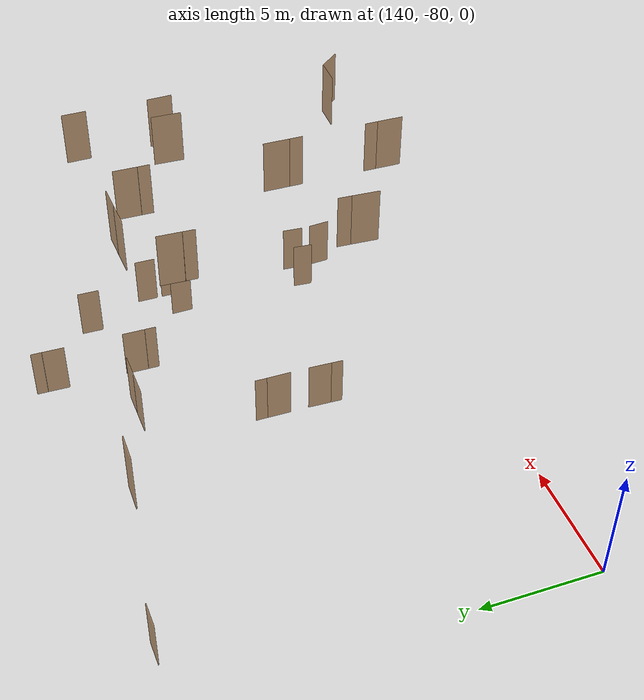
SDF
<sdf version="1.7">
 <world name="sim_world">
  <model name="puerta89">
   <pose>160.44088876173322 -76.53324441789132 0.0 0 0 1.6495602129165794</pose>
   <link name="right">
    <pose>0 0 1.11 0 0 0</pose>
    <visual name="right_visual">
     <geometry><box><size>0.9247008043293189 0.03 2.2</size></box></geometry>
     <material>
      <ambient>0.5 0.25 0 0.6</ambient>
      <diffuse>0.5 0.25 0 0.6</diffuse>
      <pbr><metal><metalness>0.0</metalness></metal></pbr>
     </material>
    </visual>
    <collision name="right_collision">
     <geometry><box><size>0.9247008043293189 0.03 2.2</size></box></geometry>
     <surface><contact><collide_bitmask>0x02</collide_bitmask></contact></surface>
    </collision>
    <inertial>
     <mass>50.0</mass>
     <inertia><ixx>20.17041666666667</ixx><iyy>23.729464906363713</iyy><izz>3.566548239697039</izz></inertia>
    </inertial>
   </link>
   <joint name="right_joint" type="revolute">
    <parent>world</parent>
    <child>right</child>
    <axis><xyz>0 0 1</xyz><limit><lower>0</lower><upper>1.57</upper></limit></axis>
    <pose>0.46735040216465945 0 0 0 0 0</pose>
   </joint>
   <plugin name="register_component" filename="libregister_component.so">
    <component name="Door">
     <v_max_door>0.5</v_max_door>
     <a_max_door>0.3</a_max_door>
     <a_nom_door>0.15</a_nom_door>
     <dx_min_door>0.01</dx_min_door>
     <f_max_door>500.0</f_max_door>
     <ros_interface>true</ros_interface>
     <door name="puerta89" type="SwingDoor" left_joint_name="empty_joint" right_joint_name="right_joint"/>
    </component>
   </plugin>
  </model>
  <model name="puerta90">
   <pose>160.43476705977383 -75.268071642846 0.0 0 0 -1.6405030245786656</pose>
   <link name="right">
    <pose>0 0 1.11 0 0 0</pose>
    <visual name="right_visual">
     <geometry><box><size>0.8701283201981976 0.03 2.2</size></box></geometry>
     <material>
      <ambient>0.5 0.25 0 0.6</ambient>
      <diffuse>0.5 0.25 0 0.6</diffuse>
      <pbr><metal><metalness>0.0</metalness></metal></pbr>
     </material>
    </visual>
    <collision name="right_collision">
     <geometry><box><size>0.8701283201981976 0.03 2.2</size></box></geometry>
     <surface><contact><collide_bitmask>0x02</collide_bitmask></contact></surface>
    </collision>
    <inertial>
     <mass>50.0</mass>
     <inertia><ixx>20.17041666666667</ixx><iyy>23.321347056712245</iyy><izz>3.1584303900455715</izz></inertia>
    </inertial>
   </link>
   <joint name="right_joint" type="revolute">
    <parent>world</parent>
    <child>right</child>
    <axis><xyz>0 0 -1</xyz><limit><lower>0</lower><upper>1.57</upper></limit></axis>
    <pose>0.4400641600990988 0 0 0 0 0</pose>
   </joint>
   <plugin name="register_component" filename="libregister_component.so">
    <component name="Door">
     <v_max_door>0.5</v_max_door>
     <a_max_door>0.3</a_max_door>
     <a_nom_door>0.15</a_nom_door>
     <dx_min_door>0.01</dx_min_door>
     <f_max_door>500.0</f_max_door>
     <ros_interface>true</ros_interface>
     <door name="puerta90" type="SwingDoor" left_joint_name="empty_joint" right_joint_name="right_joint"/>
    </component>
   </plugin>
  </model>
  <model name="puerta91">
   <pose>159.1312021676294 -75.28946604453904 0.0 0 0 -1.650242196632753</pose>
   <link name="right">
    <pose>0 0 1.11 0 0 0</pose>
    <visual name="right_visual">
     <geometry><box><size>0.8154360360300772 0.03 2.2</size></box></geometry>
     <material>
      <ambient>0.5 0.25 0 0.6</ambient>
      <diffuse>0.5 0.25 0 0.6</diffuse>
      <pbr><metal><metalness>0.0</metalness></metal></pbr>
     </material>
    </visual>
    <collision name="right_collision">
     <geometry><box><size>0.8154360360300772 0.03 2.2</size></box></geometry>
     <surface><contact><collide_bitmask>0x02</collide_bitmask></contact></surface>
    </collision>
    <inertial>
     <mass>50.0</mass>
     <inertia><ixx>20.17041666666667</ixx><iyy>22.93723303690186</iyy><izz>2.7743163702351894</izz></inertia>
    </inertial>
   </link>
   <joint name="right_joint" type="revolute">
    <parent>world</parent>
    <child>right</child>
    <axis><xyz>0 0 1</xyz><limit><lower>0</lower><upper>1.57</upper></limit></axis>
    <pose>0.4127180180150386 0 0 0 0 0</pose>
   </joint>
   <plugin name="register_component" filename="libregister_component.so">
    <component name="Door">
     <v_max_door>0.5</v_max_door>
     <a_max_door>0.3</a_max_door>
     <a_nom_door>0.15</a_nom_door>
     <dx_min_door>0.01</dx_min_door>
     <f_max_door>500.0</f_max_door>
     <ros_interface>true</ros_interface>
     <door name="puerta91" type="SwingDoor" left_joint_name="empty_joint" right_joint_name="right_joint"/>
    </component>
   </plugin>
  </model>
  <model name="puerta92">
   <pose>159.15303834162876 -69.58303005313887 0.0 0 0 1.5946024446913702</pose>
   <link name="right">
    <pose>0 0 1.11 0 0 0</pose>
    <visual name="right_visual">
     <geometry><box><size>0.9073371639634981 0.03 2.2</size></box></geometry>
     <material>
      <ambient>0.5 0.25 0 0.6</ambient>
      <diffuse>0.5 0.25 0 0.6</diffuse>
      <pbr><metal><metalness>0.0</metalness></metal></pbr>
     </material>
    </visual>
    <collision name="right_collision">
     <geometry><box><size>0.9073371639634981 0.03 2.2</size></box></geometry>
     <surface><contact><collide_bitmask>0x02</collide_bitmask></contact></surface>
    </collision>
    <inertial>
     <mass>50.0</mass>
     <inertia><ixx>20.17041666666667</ixx><iyy>23.596919704622184</iyy><izz>3.434003037955516</izz></inertia>
    </inertial>
   </link>
   <joint name="right_joint" type="revolute">
    <parent>world</parent>
    <child>right</child>
    <axis><xyz>0 0 -1</xyz><limit><lower>0</lower><upper>1.57</upper></limit></axis>
    <pose>0.45866858198174904 0 0 0 0 0</pose>
   </joint>
   <plugin name="register_component" filename="libregister_component.so">
    <component name="Door">
     <v_max_door>0.5</v_max_door>
     <a_max_door>0.3</a_max_door>
     <a_nom_door>0.15</a_nom_door>
     <dx_min_door>0.01</dx_min_door>
     <f_max_door>500.0</f_max_door>
     <ros_interface>true</ros_interface>
     <door name="puerta92" type="SwingDoor" left_joint_name="empty_joint" right_joint_name="right_joint"/>
    </component>
   </plugin>
  </model>
  <model name="puerta93">
   <pose>160.46541764312366 -69.5769504247325 0.0 0 0 1.5707963267948966</pose>
   <link name="right">
    <pose>0 0 1.11 0 0 0</pose>
    <visual name="right_visual">
     <geometry><box><size>1.1763900470803088 0.03 2.2</size></box></geometry>
     <material>
      <ambient>0.5 0.25 0 0.6</ambient>
      <diffuse>0.5 0.25 0 0.6</diffuse>
      <pbr><metal><metalness>0.0</metalness></metal></pbr>
     </material>
    </visual>
    <collision name="right_collision">
     <geometry><box><size>1.1763900470803088 0.03 2.2</size></box></geometry>
     <surface><contact><collide_bitmask>0x02</collide_bitmask></contact></surface>
    </collision>
    <inertial>
     <mass>50.0</mass>
     <inertia><ixx>20.17041666666667</ixx><iyy>25.93288976195672</iyy><izz>5.769973095290046</izz></inertia>
    </inertial>
   </link>
   <joint name="right_joint" type="revolute">
    <parent>world</parent>
    <child>right</child>
    <axis><xyz>0 0 1</xyz><limit><lower>0</lower><upper>1.57</upper></limit></axis>
    <pose>0.5931950235401544 0 0 0 0 0</pose>
   </joint>
   <plugin name="register_component" filename="libregister_component.so">
    <component name="Door">
     <v_max_door>0.5</v_max_door>
     <a_max_door>0.3</a_max_door>
     <a_nom_door>0.15</a_nom_door>
     <dx_min_door>0.01</dx_min_door>
     <f_max_door>500.0</f_max_door>
     <ros_interface>true</ros_interface>
     <door name="puerta93" type="SwingDoor" left_joint_name="empty_joint" right_joint_name="right_joint"/>
    </component>
   </plugin>
  </model>
  <model name="puerta94">
   <pose>160.46541764312366 -68.34337488797914 0.0 0 0 -1.5707963267948966</pose>
   <link name="right">
    <pose>0 0 1.11 0 0 0</pose>
    <visual name="right_visual">
     <geometry><box><size>0.8727452151851958 0.03 2.2</size></box></geometry>
     <material>
      <ambient>0.5 0.25 0 0.6</ambient>
      <diffuse>0.5 0.25 0 0.6</diffuse>
      <pbr><metal><metalness>0.0</metalness></metal></pbr>
     </material>
    </visual>
    <collision name="right_collision">
     <geometry><box><size>0.8727452151851958 0.03 2.2</size></box></geometry>
     <surface><contact><collide_bitmask>0x02</collide_bitmask></contact></surface>
    </collision>
    <inertial>
     <mass>50.0</mass>
     <inertia><ixx>20.17041666666667</ixx><iyy>23.340350877619397</iyy><izz>3.177434210952724</izz></inertia>
    </inertial>
   </link>
   <joint name="right_joint" type="revolute">
    <parent>world</parent>
    <child>right</child>
    <axis><xyz>0 0 -1</xyz><limit><lower>0</lower><upper>1.57</upper></limit></axis>
    <pose>0.4413726075925979 0 0 0 0 0</pose>
   </joint>
   <plugin name="register_component" filename="libregister_component.so">
    <component name="Door">
     <v_max_door>0.5</v_max_door>
     <a_max_door>0.3</a_max_door>
     <a_nom_door>0.15</a_nom_door>
     <dx_min_door>0.01</dx_min_door>
     <f_max_door>500.0</f_max_door>
     <ros_interface>true</ros_interface>
     <door name="puerta94" type="SwingDoor" left_joint_name="empty_joint" right_joint_name="right_joint"/>
    </component>
   </plugin>
  </model>
  <model name="puerta95">
   <pose>159.15968596300047 -65.51735744428407 0.0 0 0 -1.584109961781512</pose>
   <link name="right">
    <pose>0 0 1.11 0 0 0</pose>
    <visual name="right_visual">
     <geometry><box><size>0.9096410773566336 0.03 2.2</size></box></geometry>
     <material>
      <ambient>0.5 0.25 0 0.6</ambient>
      <diffuse>0.5 0.25 0 0.6</diffuse>
      <pbr><metal><metalness>0.0</metalness></metal></pbr>
     </material>
    </visual>
    <collision name="right_collision">
     <geometry><box><size>0.9096410773566336 0.03 2.2</size></box></geometry>
     <surface><contact><collide_bitmask>0x02</collide_bitmask></contact></surface>
    </collision>
    <inertial>
     <mass>50.0</mass>
     <inertia><ixx>20.17041666666667</ixx><iyy>23.614362040060573</iyy><izz>3.451445373393905</izz></inertia>
    </inertial>
   </link>
   <joint name="right_joint" type="revolute">
    <parent>world</parent>
    <child>right</child>
    <axis><xyz>0 0 1</xyz><limit><lower>0</lower><upper>1.57</upper></limit></axis>
    <pose>0.4598205386783168 0 0 0 0 0</pose>
   </joint>
   <plugin name="register_component" filename="libregister_component.so">
    <component name="Door">
     <v_max_door>0.5</v_max_door>
     <a_max_door>0.3</a_max_door>
     <a_nom_door>0.15</a_nom_door>
     <dx_min_door>0.01</dx_min_door>
     <f_max_door>500.0</f_max_door>
     <ros_interface>true</ros_interface>
     <door name="puerta95" type="SwingDoor" left_joint_name="empty_joint" right_joint_name="right_joint"/>
    </component>
   </plugin>
  </model>
  <model name="puerta98">
   <pose>156.05135497877384 -63.141737385296956 0.0 0 0 -1.5889700446482695</pose>
   <link name="right">
    <pose>0.22997695713537303 0 1.11 0 0 0</pose>
    <visual name="right_visual">
     <geometry><box><size>0.9099078285414919 0.03 2.2</size></box></geometry>
     <material>
      <ambient>0.5 0.25 0 0.6</ambient>
      <diffuse>0.5 0.25 0 0.6</diffuse>
      <pbr><metal><metalness>0.0</metalness></metal></pbr>
     </material>
    </visual>
    <collision name="right_collision">
     <geometry><box><size>0.9099078285414919 0.03 2.2</size></box></geometry>
     <surface><contact><collide_bitmask>0x02</collide_bitmask></contact></surface>
    </collision>
    <inertial>
     <mass>50.0</mass>
     <inertia><ixx>20.17041666666667</ixx><iyy>23.61638440183789</iyy><izz>3.453467735171221</izz></inertia>
    </inertial>
   </link>
   <joint name="right_joint" type="revolute">
    <parent>world</parent>
    <child>right</child>
    <axis><xyz>0 0 1</xyz><limit><lower>0</lower><upper>1.57</upper></limit></axis>
    <pose>0.45995391427074594 0 0 0 0 0</pose>
   </joint>
   <link name="left">
    <pose>-0.45995391427074594 0 1.11 0 0 0</pose>
    <visual name="left_visual">
     <geometry><box><size>0.44995391427074605 0.03 2.2</size></box></geometry>
     <material>
      <ambient>0.5 0.25 0 0.6</ambient>
      <diffuse>0.5 0.25 0 0.6</diffuse>
      <pbr><metal><metalness>0.0</metalness></metal></pbr>
     </material>
    </visual>
    <collision name="left_collision">
     <geometry><box><size>0.44995391427074605 0.03 2.2</size></box></geometry>
     <surface><contact><collide_bitmask>0x02</collide_bitmask></contact></surface>
    </collision>
    <inertial>
     <mass>50.0</mass>
     <inertia><ixx>20.17041666666667</ixx><iyy>21.01024385403153</iyy><izz>0.847327187364858</izz></inertia>
    </inertial>
   </link>
   <joint name="left_joint" type="revolute">
    <parent>world</parent>
    <child>left</child>
    <axis><xyz>0 0 1</xyz><limit><lower>-1.57</lower><upper>0</upper></limit></axis>
    <pose>-0.22997695713537303 0 0 0 0 0</pose>
   </joint>
   <plugin name="register_component" filename="libregister_component.so">
    <component name="Door">
     <v_max_door>0.5</v_max_door>
     <a_max_door>0.3</a_max_door>
     <a_nom_door>0.15</a_nom_door>
     <dx_min_door>0.01</dx_min_door>
     <f_max_door>500.0</f_max_door>
     <ros_interface>true</ros_interface>
     <door name="puerta98" type="DoubleSwingDoor" left_joint_name="left_joint" right_joint_name="right_joint"/>
    </component>
   </plugin>
  </model>
  <model name="puerta99">
   <pose>156.02343917636807 -66.96914746359583 0.0 0 0 1.5655522411860074</pose>
   <link name="right">
    <pose>0.23668101446797274 0 1.11 0 0 0</pose>
    <visual name="right_visual">
     <geometry><box><size>0.936724057871891 0.03 2.2</size></box></geometry>
     <material>
      <ambient>0.5 0.25 0 0.6</ambient>
      <diffuse>0.5 0.25 0 0.6</diffuse>
      <pbr><metal><metalness>0.0</metalness></metal></pbr>
     </material>
    </visual>
    <collision name="right_collision">
     <geometry><box><size>0.936724057871891 0.03 2.2</size></box></geometry>
     <surface><contact><collide_bitmask>0x02</collide_bitmask></contact></surface>
    </collision>
    <inertial>
     <mass>50.0</mass>
     <inertia><ixx>20.17041666666667</ixx><iyy>23.822716502483264</iyy><izz>3.659799835816591</izz></inertia>
    </inertial>
   </link>
   <joint name="right_joint" type="revolute">
    <parent>world</parent>
    <child>right</child>
    <axis><xyz>0 0 -1</xyz><limit><lower>0</lower><upper>1.57</upper></limit></axis>
    <pose>0.4733620289359455 0 0 0 0 0</pose>
   </joint>
   <link name="left">
    <pose>-0.4733620289359455 0 1.11 0 0 0</pose>
    <visual name="left_visual">
     <geometry><box><size>0.46336202893594547 0.03 2.2</size></box></geometry>
     <material>
      <ambient>0.5 0.25 0 0.6</ambient>
      <diffuse>0.5 0.25 0 0.6</diffuse>
      <pbr><metal><metalness>0.0</metalness></metal></pbr>
     </material>
    </visual>
    <collision name="left_collision">
     <geometry><box><size>0.46336202893594547 0.03 2.2</size></box></geometry>
     <surface><contact><collide_bitmask>0x02</collide_bitmask></contact></surface>
    </collision>
    <inertial>
     <mass>50.0</mass>
     <inertia><ixx>20.17041666666667</ixx><iyy>21.061268207748487</iyy><izz>0.8983515410818167</izz></inertia>
    </inertial>
   </link>
   <joint name="left_joint" type="revolute">
    <parent>world</parent>
    <child>left</child>
    <axis><xyz>0 0 -1</xyz><limit><lower>-1.57</lower><upper>0</upper></limit></axis>
    <pose>-0.23668101446797274 0 0 0 0 0</pose>
   </joint>
   <plugin name="register_component" filename="libregister_component.so">
    <component name="Door">
     <v_max_door>0.5</v_max_door>
     <a_max_door>0.3</a_max_door>
     <a_nom_door>0.15</a_nom_door>
     <dx_min_door>0.01</dx_min_door>
     <f_max_door>500.0</f_max_door>
     <ros_interface>true</ros_interface>
     <door name="puerta99" type="DoubleSwingDoor" left_joint_name="left_joint" right_joint_name="right_joint"/>
    </component>
   </plugin>
  </model>
  <model name="puerta100">
   <pose>151.53261331459652 -71.29571817451266 0.0 0 0 -1.5707963267948966</pose>
   <link name="right">
    <pose>0.24978367181506655 0 1.11 0 0 0</pose>
    <visual name="right_visual">
     <geometry><box><size>0.9891346872602662 0.03 2.2</size></box></geometry>
     <material>
      <ambient>0.5 0.25 0 0.6</ambient>
      <diffuse>0.5 0.25 0 0.6</diffuse>
      <pbr><metal><metalness>0.0</metalness></metal></pbr>
     </material>
    </visual>
    <collision name="right_collision">
     <geometry><box><size>0.9891346872602662 0.03 2.2</size></box></geometry>
     <surface><contact><collide_bitmask>0x02</collide_bitmask></contact></surface>
    </collision>
    <inertial>
     <mass>50.0</mass>
     <inertia><ixx>20.17041666666667</ixx><iyy>24.243280956422772</iyy><izz>4.080364289756103</izz></inertia>
    </inertial>
   </link>
   <joint name="right_joint" type="revolute">
    <parent>world</parent>
    <child>right</child>
    <axis><xyz>0 0 -1</xyz><limit><lower>0</lower><upper>1.57</upper></limit></axis>
    <pose>0.4995673436301331 0 0 0 0 0</pose>
   </joint>
   <link name="left">
    <pose>-0.4995673436301331 0 1.11 0 0 0</pose>
    <visual name="left_visual">
     <geometry><box><size>0.4895673436301331 0.03 2.2</size></box></geometry>
     <material>
      <ambient>0.5 0.25 0 0.6</ambient>
      <diffuse>0.5 0.25 0 0.6</diffuse>
      <pbr><metal><metalness>0.0</metalness></metal></pbr>
     </material>
    </visual>
    <collision name="left_collision">
     <geometry><box><size>0.4895673436301331 0.03 2.2</size></box></geometry>
     <surface><contact><collide_bitmask>0x02</collide_bitmask></contact></surface>
    </collision>
    <inertial>
     <mass>50.0</mass>
     <inertia><ixx>20.17041666666667</ixx><iyy>21.16531743312111</iyy><izz>1.0024007664544368</izz></inertia>
    </inertial>
   </link>
   <joint name="left_joint" type="revolute">
    <parent>world</parent>
    <child>left</child>
    <axis><xyz>0 0 -1</xyz><limit><lower>-1.57</lower><upper>0</upper></limit></axis>
    <pose>-0.24978367181506655 0 0 0 0 0</pose>
   </joint>
   <plugin name="register_component" filename="libregister_component.so">
    <component name="Door">
     <v_max_door>0.5</v_max_door>
     <a_max_door>0.3</a_max_door>
     <a_nom_door>0.15</a_nom_door>
     <dx_min_door>0.01</dx_min_door>
     <f_max_door>500.0</f_max_door>
     <ros_interface>true</ros_interface>
     <door name="puerta100" type="DoubleSwingDoor" left_joint_name="left_joint" right_joint_name="right_joint"/>
    </component>
   </plugin>
  </model>
  <model name="puerta101">
   <pose>151.50812650675906 -73.53956386554972 0.0 0 0 1.5372584369946147</pose>
   <link name="right">
    <pose>0.24342019335349463 0 1.11 0 0 0</pose>
    <visual name="right_visual">
     <geometry><box><size>0.9636807734139783 0.03 2.2</size></box></geometry>
     <material>
      <ambient>0.5 0.25 0 0.6</ambient>
      <diffuse>0.5 0.25 0 0.6</diffuse>
      <pbr><metal><metalness>0.0</metalness></metal></pbr>
     </material>
    </visual>
    <collision name="right_collision">
     <geometry><box><size>0.9636807734139783 0.03 2.2</size></box></geometry>
     <surface><contact><collide_bitmask>0x02</collide_bitmask></contact></surface>
    </collision>
    <inertial>
     <mass>50.0</mass>
     <inertia><ixx>20.17041666666667</ixx><iyy>24.036169304365686</iyy><izz>3.8732526376990144</izz></inertia>
    </inertial>
   </link>
   <joint name="right_joint" type="revolute">
    <parent>world</parent>
    <child>right</child>
    <axis><xyz>0 0 1</xyz><limit><lower>0</lower><upper>1.57</upper></limit></axis>
    <pose>0.48684038670698915 0 0 0 0 0</pose>
   </joint>
   <link name="left">
    <pose>-0.48684038670698915 0 1.11 0 0 0</pose>
    <visual name="left_visual">
     <geometry><box><size>0.47684038670698925 0.03 2.2</size></box></geometry>
     <material>
      <ambient>0.5 0.25 0 0.6</ambient>
      <diffuse>0.5 0.25 0 0.6</diffuse>
      <pbr><metal><metalness>0.0</metalness></metal></pbr>
     </material>
    </visual>
    <collision name="left_collision">
     <geometry><box><size>0.47684038670698925 0.03 2.2</size></box></geometry>
     <surface><contact><collide_bitmask>0x02</collide_bitmask></contact></surface>
    </collision>
    <inertial>
     <mass>50.0</mass>
     <inertia><ixx>20.17041666666667</ixx><iyy>21.11406980997863</iyy><izz>0.9511531433119628</izz></inertia>
    </inertial>
   </link>
   <joint name="left_joint" type="revolute">
    <parent>world</parent>
    <child>left</child>
    <axis><xyz>0 0 1</xyz><limit><lower>-1.57</lower><upper>0</upper></limit></axis>
    <pose>-0.24342019335349463 0 0 0 0 0</pose>
   </joint>
   <plugin name="register_component" filename="libregister_component.so">
    <component name="Door">
     <v_max_door>0.5</v_max_door>
     <a_max_door>0.3</a_max_door>
     <a_nom_door>0.15</a_nom_door>
     <dx_min_door>0.01</dx_min_door>
     <f_max_door>500.0</f_max_door>
     <ros_interface>true</ros_interface>
     <door name="puerta101" type="DoubleSwingDoor" left_joint_name="left_joint" right_joint_name="right_joint"/>
    </component>
   </plugin>
  </model>
  <model name="puerta156">
   <pose>142.0985446758022 -63.7868722099975 0.0 0 0 0.023340412605322203</pose>
   <link name="right">
    <pose>0 0 1.11 0 0 0</pose>
    <visual name="right_visual">
     <geometry><box><size>0.9815229744686816 0.03 2.2</size></box></geometry>
     <material>
      <ambient>0.5 0.25 0 0.6</ambient>
      <diffuse>0.5 0.25 0 0.6</diffuse>
      <pbr><metal><metalness>0.0</metalness></metal></pbr>
     </material>
    </visual>
    <collision name="right_collision">
     <geometry><box><size>0.9815229744686816 0.03 2.2</size></box></geometry>
     <surface><contact><collide_bitmask>0x02</collide_bitmask></contact></surface>
    </collision>
    <inertial>
     <mass>50.0</mass>
     <inertia><ixx>20.17041666666667</ixx><iyy>24.18078062254104</iyy><izz>4.017863955874368</izz></inertia>
    </inertial>
   </link>
   <joint name="right_joint" type="revolute">
    <parent>world</parent>
    <child>right</child>
    <axis><xyz>0 0 1</xyz><limit><lower>0</lower><upper>1.57</upper></limit></axis>
    <pose>0.4957614872343408 0 0 0 0 0</pose>
   </joint>
   <plugin name="register_component" filename="libregister_component.so">
    <component name="Door">
     <v_max_door>0.5</v_max_door>
     <a_max_door>0.3</a_max_door>
     <a_nom_door>0.15</a_nom_door>
     <dx_min_door>0.01</dx_min_door>
     <f_max_door>500.0</f_max_door>
     <ros_interface>true</ros_interface>
     <door name="puerta156" type="SwingDoor" left_joint_name="empty_joint" right_joint_name="right_joint"/>
    </component>
   </plugin>
  </model>
  <model name="puerta157">
   <pose>153.52910858763283 -66.10093866096707 0.0 0 0 0.024184844315332625</pose>
   <link name="right">
    <pose>0.5319547557124498 0 1.11 0 0 0</pose>
    <visual name="right_visual">
     <geometry><box><size>1.0539095114248995 0.03 2.2</size></box></geometry>
     <material>
      <ambient>0.5 0.25 0 0.6</ambient>
      <diffuse>0.5 0.25 0 0.6</diffuse>
      <pbr><metal><metalness>0.0</metalness></metal></pbr>
     </material>
    </visual>
    <collision name="right_collision">
     <geometry><box><size>1.0539095114248995 0.03 2.2</size></box></geometry>
     <surface><contact><collide_bitmask>0x02</collide_bitmask></contact></surface>
    </collision>
    <inertial>
     <mass>50.0</mass>
     <inertia><ixx>20.17041666666667</ixx><iyy>24.7946885761328</iyy><izz>4.631771909466127</izz></inertia>
    </inertial>
   </link>
   <joint name="right_joint" type="revolute">
    <parent>world</parent>
    <child>right</child>
    <axis><xyz>0 0 -1</xyz><limit><lower>0</lower><upper>1.57</upper></limit></axis>
    <pose>0.5319547557124498 0 0 0 0 0</pose>
   </joint>
   <link name="left">
    <pose>-0.5319547557124498 0 1.11 0 0 0</pose>
    <visual name="left_visual">
     <geometry><box><size>1.0539095114248995 0.03 2.2</size></box></geometry>
     <material>
      <ambient>0.5 0.25 0 0.6</ambient>
      <diffuse>0.5 0.25 0 0.6</diffuse>
      <pbr><metal><metalness>0.0</metalness></metal></pbr>
     </material>
    </visual>
    <collision name="left_collision">
     <geometry><box><size>1.0539095114248995 0.03 2.2</size></box></geometry>
     <surface><contact><collide_bitmask>0x02</collide_bitmask></contact></surface>
    </collision>
    <inertial>
     <mass>50.0</mass>
     <inertia><ixx>20.17041666666667</ixx><iyy>24.7946885761328</iyy><izz>4.631771909466127</izz></inertia>
    </inertial>
   </link>
   <joint name="left_joint" type="revolute">
    <parent>world</parent>
    <child>left</child>
    <axis><xyz>0 0 -1</xyz><limit><lower>-1.57</lower><upper>0</upper></limit></axis>
    <pose>-0.5319547557124498 0 0 0 0 0</pose>
   </joint>
   <plugin name="register_component" filename="libregister_component.so">
    <component name="Door">
     <v_max_door>0.5</v_max_door>
     <a_max_door>0.3</a_max_door>
     <a_nom_door>0.15</a_nom_door>
     <dx_min_door>0.01</dx_min_door>
     <f_max_door>500.0</f_max_door>
     <ros_interface>true</ros_interface>
     <door name="puerta157" type="DoubleSwingDoor" left_joint_name="left_joint" right_joint_name="right_joint"/>
    </component>
   </plugin>
  </model>
  <model name="puerta201">
   <pose>142.14807680308064 -63.75079795901105 8.0 0 0 -3.141256157642585</pose>
   <link name="right">
    <pose>0 0 1.11 0 0 0</pose>
    <visual name="right_visual">
     <geometry><box><size>0.9446918614332197 0.03 2.2</size></box></geometry>
     <material>
      <ambient>0.5 0.25 0 0.6</ambient>
      <diffuse>0.5 0.25 0 0.6</diffuse>
      <pbr><metal><metalness>0.0</metalness></metal></pbr>
     </material>
    </visual>
    <collision name="right_collision">
     <geometry><box><size>0.9446918614332197 0.03 2.2</size></box></geometry>
     <surface><contact><collide_bitmask>0x02</collide_bitmask></contact></surface>
    </collision>
    <inertial>
     <mass>50.0</mass>
     <inertia><ixx>20.17041666666667</ixx><iyy>23.885177971075677</iyy><izz>3.722261304409007</izz></inertia>
    </inertial>
   </link>
   <joint name="right_joint" type="revolute">
    <parent>world</parent>
    <child>right</child>
    <axis><xyz>0 0 1</xyz><limit><lower>0</lower><upper>1.57</upper></limit></axis>
    <pose>0.47734593071660986 0 0 0 0 0</pose>
   </joint>
   <plugin name="register_component" filename="libregister_component.so">
    <component name="Door">
     <v_max_door>0.5</v_max_door>
     <a_max_door>0.3</a_max_door>
     <a_nom_door>0.15</a_nom_door>
     <dx_min_door>0.01</dx_min_door>
     <f_max_door>500.0</f_max_door>
     <ros_interface>true</ros_interface>
     <door name="puerta201" type="SwingDoor" left_joint_name="empty_joint" right_joint_name="right_joint"/>
    </component>
   </plugin>
  </model>
  <model name="puerta204">
   <pose>153.8688273956894 -66.16469992766488 8.0 0 0 -3.0987736760684026</pose>
   <link name="right">
    <pose>0.516186154718727 0 1.11 0 0 0</pose>
    <visual name="right_visual">
     <geometry><box><size>1.022372309437454 0.03 2.2</size></box></geometry>
     <material>
      <ambient>0.5 0.25 0 0.6</ambient>
      <diffuse>0.5 0.25 0 0.6</diffuse>
      <pbr><metal><metalness>0.0</metalness></metal></pbr>
     </material>
    </visual>
    <collision name="right_collision">
     <geometry><box><size>1.022372309437454 0.03 2.2</size></box></geometry>
     <surface><contact><collide_bitmask>0x02</collide_bitmask></contact></surface>
    </collision>
    <inertial>
     <mass>50.0</mass>
     <inertia><ixx>20.17041666666667</ixx><iyy>24.521854746268644</iyy><izz>4.3589380796019705</izz></inertia>
    </inertial>
   </link>
   <joint name="right_joint" type="revolute">
    <parent>world</parent>
    <child>right</child>
    <axis><xyz>0 0 1</xyz><limit><lower>0</lower><upper>1.57</upper></limit></axis>
    <pose>0.516186154718727 0 0 0 0 0</pose>
   </joint>
   <link name="left">
    <pose>-0.516186154718727 0 1.11 0 0 0</pose>
    <visual name="left_visual">
     <geometry><box><size>1.022372309437454 0.03 2.2</size></box></geometry>
     <material>
      <ambient>0.5 0.25 0 0.6</ambient>
      <diffuse>0.5 0.25 0 0.6</diffuse>
      <pbr><metal><metalness>0.0</metalness></metal></pbr>
     </material>
    </visual>
    <collision name="left_collision">
     <geometry><box><size>1.022372309437454 0.03 2.2</size></box></geometry>
     <surface><contact><collide_bitmask>0x02</collide_bitmask></contact></surface>
    </collision>
    <inertial>
     <mass>50.0</mass>
     <inertia><ixx>20.17041666666667</ixx><iyy>24.521854746268644</iyy><izz>4.3589380796019705</izz></inertia>
    </inertial>
   </link>
   <joint name="left_joint" type="revolute">
    <parent>world</parent>
    <child>left</child>
    <axis><xyz>0 0 1</xyz><limit><lower>-1.57</lower><upper>0</upper></limit></axis>
    <pose>-0.516186154718727 0 0 0 0 0</pose>
   </joint>
   <plugin name="register_component" filename="libregister_component.so">
    <component name="Door">
     <v_max_door>0.5</v_max_door>
     <a_max_door>0.3</a_max_door>
     <a_nom_door>0.15</a_nom_door>
     <dx_min_door>0.01</dx_min_door>
     <f_max_door>500.0</f_max_door>
     <ros_interface>true</ros_interface>
     <door name="puerta204" type="DoubleSwingDoor" left_joint_name="left_joint" right_joint_name="right_joint"/>
    </component>
   </plugin>
  </model>
  <model name="puerta205">
   <pose>151.57356799195315 -67.83596221943827 8.0 0 0 1.531565202789341</pose>
   <link name="right">
    <pose>0.23933366051901594 0 1.11 0 0 0</pose>
    <visual name="right_visual">
     <geometry><box><size>0.9473346420760635 0.03 2.2</size></box></geometry>
     <material>
      <ambient>0.5 0.25 0 0.6</ambient>
      <diffuse>0.5 0.25 0 0.6</diffuse>
      <pbr><metal><metalness>0.0</metalness></metal></pbr>
     </material>
    </visual>
    <collision name="right_collision">
     <geometry><box><size>0.9473346420760635 0.03 2.2</size></box></geometry>
     <surface><contact><collide_bitmask>0x02</collide_bitmask></contact></surface>
    </collision>
    <inertial>
     <mass>50.0</mass>
     <inertia><ixx>20.17041666666667</ixx><iyy>23.90601218365577</iyy><izz>3.743095516989098</izz></inertia>
    </inertial>
   </link>
   <joint name="right_joint" type="revolute">
    <parent>world</parent>
    <child>right</child>
    <axis><xyz>0 0 1</xyz><limit><lower>0</lower><upper>1.57</upper></limit></axis>
    <pose>0.4786673210380318 0 0 0 0 0</pose>
   </joint>
   <link name="left">
    <pose>-0.4786673210380318 0 1.11 0 0 0</pose>
    <visual name="left_visual">
     <geometry><box><size>0.4686673210380319 0.03 2.2</size></box></geometry>
     <material>
      <ambient>0.5 0.25 0 0.6</ambient>
      <diffuse>0.5 0.25 0 0.6</diffuse>
      <pbr><metal><metalness>0.0</metalness></metal></pbr>
     </material>
    </visual>
    <collision name="left_collision">
     <geometry><box><size>0.4686673210380319 0.03 2.2</size></box></geometry>
     <surface><contact><collide_bitmask>0x02</collide_bitmask></contact></surface>
    </collision>
    <inertial>
     <mass>50.0</mass>
     <inertia><ixx>20.17041666666667</ixx><iyy>21.08187107420403</iyy><izz>0.918954407537357</izz></inertia>
    </inertial>
   </link>
   <joint name="left_joint" type="revolute">
    <parent>world</parent>
    <child>left</child>
    <axis><xyz>0 0 1</xyz><limit><lower>-1.57</lower><upper>0</upper></limit></axis>
    <pose>-0.23933366051901594 0 0 0 0 0</pose>
   </joint>
   <plugin name="register_component" filename="libregister_component.so">
    <component name="Door">
     <v_max_door>0.5</v_max_door>
     <a_max_door>0.3</a_max_door>
     <a_nom_door>0.15</a_nom_door>
     <dx_min_door>0.01</dx_min_door>
     <f_max_door>500.0</f_max_door>
     <ros_interface>true</ros_interface>
     <door name="puerta205" type="DoubleSwingDoor" left_joint_name="left_joint" right_joint_name="right_joint"/>
    </component>
   </plugin>
  </model>
  <model name="puerta206">
   <pose>156.00984393417775 -67.34418470225924 8.0 0 0 1.5638315420523694</pose>
   <link name="right">
    <pose>0.23916673555638002 0 1.11 0 0 0</pose>
    <visual name="right_visual">
     <geometry><box><size>0.9466669422255198 0.03 2.2</size></box></geometry>
     <material>
      <ambient>0.5 0.25 0 0.6</ambient>
      <diffuse>0.5 0.25 0 0.6</diffuse>
      <pbr><metal><metalness>0.0</metalness></metal></pbr>
     </material>
    </visual>
    <collision name="right_collision">
     <geometry><box><size>0.9466669422255198 0.03 2.2</size></box></geometry>
     <surface><contact><collide_bitmask>0x02</collide_bitmask></contact></surface>
    </collision>
    <inertial>
     <mass>50.0</mass>
     <inertia><ixx>20.17041666666667</ixx><iyy>23.900742914594236</iyy><izz>3.7378262479275657</izz></inertia>
    </inertial>
   </link>
   <joint name="right_joint" type="revolute">
    <parent>world</parent>
    <child>right</child>
    <axis><xyz>0 0 -1</xyz><limit><lower>0</lower><upper>1.57</upper></limit></axis>
    <pose>0.4783334711127599 0 0 0 0 0</pose>
   </joint>
   <link name="left">
    <pose>-0.4783334711127599 0 1.11 0 0 0</pose>
    <visual name="left_visual">
     <geometry><box><size>0.46833347111276 0.03 2.2</size></box></geometry>
     <material>
      <ambient>0.5 0.25 0 0.6</ambient>
      <diffuse>0.5 0.25 0 0.6</diffuse>
      <pbr><metal><metalness>0.0</metalness></metal></pbr>
     </material>
    </visual>
    <collision name="left_collision">
     <geometry><box><size>0.46833347111276 0.03 2.2</size></box></geometry>
     <surface><contact><collide_bitmask>0x02</collide_bitmask></contact></surface>
    </collision>
    <inertial>
     <mass>50.0</mass>
     <inertia><ixx>20.17041666666667</ixx><iyy>21.0805676673522</iyy><izz>0.917651000685527</izz></inertia>
    </inertial>
   </link>
   <joint name="left_joint" type="revolute">
    <parent>world</parent>
    <child>left</child>
    <axis><xyz>0 0 -1</xyz><limit><lower>-1.57</lower><upper>0</upper></limit></axis>
    <pose>-0.23916673555638002 0 0 0 0 0</pose>
   </joint>
   <plugin name="register_component" filename="libregister_component.so">
    <component name="Door">
     <v_max_door>0.5</v_max_door>
     <a_max_door>0.3</a_max_door>
     <a_nom_door>0.15</a_nom_door>
     <dx_min_door>0.01</dx_min_door>
     <f_max_door>500.0</f_max_door>
     <ros_interface>true</ros_interface>
     <door name="puerta206" type="DoubleSwingDoor" left_joint_name="left_joint" right_joint_name="right_joint"/>
    </component>
   </plugin>
  </model>
  <model name="puerta207">
   <pose>160.50575286991804 -66.13023541537333 8.0 0 0 1.5965676495795718</pose>
   <link name="right">
    <pose>0 0 1.11 0 0 0</pose>
    <visual name="right_visual">
     <geometry><box><size>0.9793890312716746 0.03 2.2</size></box></geometry>
     <material>
      <ambient>0.5 0.25 0 0.6</ambient>
      <diffuse>0.5 0.25 0 0.6</diffuse>
      <pbr><metal><metalness>0.0</metalness></metal></pbr>
     </material>
    </visual>
    <collision name="right_collision">
     <geometry><box><size>0.9793890312716746 0.03 2.2</size></box></geometry>
     <surface><contact><collide_bitmask>0x02</collide_bitmask></contact></surface>
    </collision>
    <inertial>
     <mass>50.0</mass>
     <inertia><ixx>20.17041666666667</ixx><iyy>24.163345310730293</iyy><izz>4.000428644063622</izz></inertia>
    </inertial>
   </link>
   <joint name="right_joint" type="revolute">
    <parent>world</parent>
    <child>right</child>
    <axis><xyz>0 0 1</xyz><limit><lower>0</lower><upper>1.57</upper></limit></axis>
    <pose>0.49469451563583733 0 0 0 0 0</pose>
   </joint>
   <plugin name="register_component" filename="libregister_component.so">
    <component name="Door">
     <v_max_door>0.5</v_max_door>
     <a_max_door>0.3</a_max_door>
     <a_nom_door>0.15</a_nom_door>
     <dx_min_door>0.01</dx_min_door>
     <f_max_door>500.0</f_max_door>
     <ros_interface>true</ros_interface>
     <door name="puerta207" type="SwingDoor" left_joint_name="empty_joint" right_joint_name="right_joint"/>
    </component>
   </plugin>
  </model>
  <model name="puerta208">
   <pose>160.53823805861072 -69.63600013183185 8.0 0 0 1.6075339385694647</pose>
   <link name="right">
    <pose>0 0 1.11 0 0 0</pose>
    <visual name="right_visual">
     <geometry><box><size>1.0190088008378178 0.03 2.2</size></box></geometry>
     <material>
      <ambient>0.5 0.25 0 0.6</ambient>
      <diffuse>0.5 0.25 0 0.6</diffuse>
      <pbr><metal><metalness>0.0</metalness></metal></pbr>
     </material>
    </visual>
    <collision name="right_collision">
     <geometry><box><size>1.0190088008378178 0.03 2.2</size></box></geometry>
     <surface><contact><collide_bitmask>0x02</collide_bitmask></contact></surface>
    </collision>
    <inertial>
     <mass>50.0</mass>
     <inertia><ixx>20.17041666666667</ixx><iyy>24.493245567437203</iyy><izz>4.330328900770531</izz></inertia>
    </inertial>
   </link>
   <joint name="right_joint" type="revolute">
    <parent>world</parent>
    <child>right</child>
    <axis><xyz>0 0 1</xyz><limit><lower>0</lower><upper>1.57</upper></limit></axis>
    <pose>0.5145044004189089 0 0 0 0 0</pose>
   </joint>
   <plugin name="register_component" filename="libregister_component.so">
    <component name="Door">
     <v_max_door>0.5</v_max_door>
     <a_max_door>0.3</a_max_door>
     <a_nom_door>0.15</a_nom_door>
     <dx_min_door>0.01</dx_min_door>
     <f_max_door>500.0</f_max_door>
     <ros_interface>true</ros_interface>
     <door name="puerta208" type="SwingDoor" left_joint_name="empty_joint" right_joint_name="right_joint"/>
    </component>
   </plugin>
  </model>
  <model name="puerta209">
   <pose>159.1636041360054 -69.5421884944347 8.0 0 0 1.5406098017911352</pose>
   <link name="right">
    <pose>0 0 1.11 0 0 0</pose>
    <visual name="right_visual">
     <geometry><box><size>1.2074425923029686 0.03 2.2</size></box></geometry>
     <material>
      <ambient>0.5 0.25 0 0.6</ambient>
      <diffuse>0.5 0.25 0 0.6</diffuse>
      <pbr><metal><metalness>0.0</metalness></metal></pbr>
     </material>
    </visual>
    <collision name="right_collision">
     <geometry><box><size>1.2074425923029686 0.03 2.2</size></box></geometry>
     <surface><contact><collide_bitmask>0x02</collide_bitmask></contact></surface>
    </collision>
    <inertial>
     <mass>50.0</mass>
     <inertia><ixx>20.17041666666667</ixx><iyy>26.241323390447143</iyy><izz>6.07840672378047</izz></inertia>
    </inertial>
   </link>
   <joint name="right_joint" type="revolute">
    <parent>world</parent>
    <child>right</child>
    <axis><xyz>0 0 -1</xyz><limit><lower>0</lower><upper>1.57</upper></limit></axis>
    <pose>0.6087212961514843 0 0 0 0 0</pose>
   </joint>
   <plugin name="register_component" filename="libregister_component.so">
    <component name="Door">
     <v_max_door>0.5</v_max_door>
     <a_max_door>0.3</a_max_door>
     <a_nom_door>0.15</a_nom_door>
     <dx_min_door>0.01</dx_min_door>
     <f_max_door>500.0</f_max_door>
     <ros_interface>true</ros_interface>
     <door name="puerta209" type="SwingDoor" left_joint_name="empty_joint" right_joint_name="right_joint"/>
    </component>
   </plugin>
  </model>
  <model name="puerta215">
   <pose>155.89043622772286 -73.30666279545667 8.0 0 0 -1.5704598308476927</pose>
   <link name="right">
    <pose>0.5348165097376092 0 1.11 0 0 0</pose>
    <visual name="right_visual">
     <geometry><box><size>0.5248165097376092 0.03 2.2</size></box></geometry>
     <material>
      <ambient>0.5 0.25 0 0.6</ambient>
      <diffuse>0.5 0.25 0 0.6</diffuse>
      <pbr><metal><metalness>0.0</metalness></metal></pbr>
     </material>
    </visual>
    <collision name="right_collision">
     <geometry><box><size>0.5248165097376092 0.03 2.2</size></box></geometry>
     <surface><contact><collide_bitmask>0x02</collide_bitmask></contact></surface>
    </collision>
    <inertial>
     <mass>50.0</mass>
     <inertia><ixx>20.17041666666667</ixx><iyy>21.314301537054863</iyy><izz>1.151384870388192</izz></inertia>
    </inertial>
   </link>
   <joint name="right_joint" type="revolute">
    <parent>world</parent>
    <child>right</child>
    <axis><xyz>0 0 1</xyz><limit><lower>0</lower><upper>1.57</upper></limit></axis>
    <pose>0.2674082548688046 0 0 0 0 0</pose>
   </joint>
   <link name="left">
    <pose>-0.2674082548688046 0 1.11 0 0 0</pose>
    <visual name="left_visual">
     <geometry><box><size>1.0596330194752184 0.03 2.2</size></box></geometry>
     <material>
      <ambient>0.5 0.25 0 0.6</ambient>
      <diffuse>0.5 0.25 0 0.6</diffuse>
      <pbr><metal><metalness>0.0</metalness></metal></pbr>
     </material>
    </visual>
    <collision name="left_collision">
     <geometry><box><size>1.0596330194752184 0.03 2.2</size></box></geometry>
     <surface><contact><collide_bitmask>0x02</collide_bitmask></contact></surface>
    </collision>
    <inertial>
     <mass>50.0</mass>
     <inertia><ixx>20.17041666666667</ixx><iyy>24.84509223317571</iyy><izz>4.682175566509036</izz></inertia>
    </inertial>
   </link>
   <joint name="left_joint" type="revolute">
    <parent>world</parent>
    <child>left</child>
    <axis><xyz>0 0 1</xyz><limit><lower>-1.57</lower><upper>0</upper></limit></axis>
    <pose>-0.5348165097376092 0 0 0 0 0</pose>
   </joint>
   <plugin name="register_component" filename="libregister_component.so">
    <component name="Door">
     <v_max_door>0.5</v_max_door>
     <a_max_door>0.3</a_max_door>
     <a_nom_door>0.15</a_nom_door>
     <dx_min_door>0.01</dx_min_door>
     <f_max_door>500.0</f_max_door>
     <ros_interface>true</ros_interface>
     <door name="puerta215" type="DoubleSwingDoor" left_joint_name="left_joint" right_joint_name="right_joint"/>
    </component>
   </plugin>
  </model>
  <model name="puerta216">
   <pose>151.5564083521038 -74.73694013791317 8.0 0 0 -1.6205433558907931</pose>
   <link name="right">
    <pose>0.2714795217595999 0 1.11 0 0 0</pose>
    <visual name="right_visual">
     <geometry><box><size>1.0759180870383993 0.03 2.2</size></box></geometry>
     <material>
      <ambient>0.5 0.25 0 0.6</ambient>
      <diffuse>0.5 0.25 0 0.6</diffuse>
      <pbr><metal><metalness>0.0</metalness></metal></pbr>
     </material>
    </visual>
    <collision name="right_collision">
     <geometry><box><size>1.0759180870383993 0.03 2.2</size></box></geometry>
     <surface><contact><collide_bitmask>0x02</collide_bitmask></contact></surface>
    </collision>
    <inertial>
     <mass>50.0</mass>
     <inertia><ixx>20.17041666666667</ixx><iyy>24.989998875068206</iyy><izz>4.827082208401535</izz></inertia>
    </inertial>
   </link>
   <joint name="right_joint" type="revolute">
    <parent>world</parent>
    <child>right</child>
    <axis><xyz>0 0 -1</xyz><limit><lower>0</lower><upper>1.57</upper></limit></axis>
    <pose>0.5429590435191997 0 0 0 0 0</pose>
   </joint>
   <link name="left">
    <pose>-0.5429590435191997 0 1.11 0 0 0</pose>
    <visual name="left_visual">
     <geometry><box><size>0.5329590435191998 0.03 2.2</size></box></geometry>
     <material>
      <ambient>0.5 0.25 0 0.6</ambient>
      <diffuse>0.5 0.25 0 0.6</diffuse>
      <pbr><metal><metalness>0.0</metalness></metal></pbr>
     </material>
    </visual>
    <collision name="left_collision">
     <geometry><box><size>0.5329590435191998 0.03 2.2</size></box></geometry>
     <surface><contact><collide_bitmask>0x02</collide_bitmask></contact></surface>
    </collision>
    <inertial>
     <mass>50.0</mass>
     <inertia><ixx>20.17041666666667</ixx><iyy>21.35018892528709</iyy><izz>1.1872722586204179</izz></inertia>
    </inertial>
   </link>
   <joint name="left_joint" type="revolute">
    <parent>world</parent>
    <child>left</child>
    <axis><xyz>0 0 -1</xyz><limit><lower>-1.57</lower><upper>0</upper></limit></axis>
    <pose>-0.2714795217595999 0 0 0 0 0</pose>
   </joint>
   <plugin name="register_component" filename="libregister_component.so">
    <component name="Door">
     <v_max_door>0.5</v_max_door>
     <a_max_door>0.3</a_max_door>
     <a_nom_door>0.15</a_nom_door>
     <dx_min_door>0.01</dx_min_door>
     <f_max_door>500.0</f_max_door>
     <ros_interface>true</ros_interface>
     <door name="puerta216" type="DoubleSwingDoor" left_joint_name="left_joint" right_joint_name="right_joint"/>
    </component>
   </plugin>
  </model>
  <model name="puerta217">
   <pose>155.894247516085 -77.50547137071098 8.0 0 0 -1.5704598308476734</pose>
   <link name="right">
    <pose>0.2610265310238865 0 1.11 0 0 0</pose>
    <visual name="right_visual">
     <geometry><box><size>1.0341061240955456 0.03 2.2</size></box></geometry>
     <material>
      <ambient>0.5 0.25 0 0.6</ambient>
      <diffuse>0.5 0.25 0 0.6</diffuse>
      <pbr><metal><metalness>0.0</metalness></metal></pbr>
     </material>
    </visual>
    <collision name="right_collision">
     <geometry><box><size>1.0341061240955456 0.03 2.2</size></box></geometry>
     <surface><contact><collide_bitmask>0x02</collide_bitmask></contact></surface>
    </collision>
    <inertial>
     <mass>50.0</mass>
     <inertia><ixx>20.17041666666667</ixx><iyy>24.622397816216303</iyy><izz>4.4594811495496325</izz></inertia>
    </inertial>
   </link>
   <joint name="right_joint" type="revolute">
    <parent>world</parent>
    <child>right</child>
    <axis><xyz>0 0 1</xyz><limit><lower>0</lower><upper>1.57</upper></limit></axis>
    <pose>0.5220530620477728 0 0 0 0 0</pose>
   </joint>
   <link name="left">
    <pose>-0.5220530620477728 0 1.11 0 0 0</pose>
    <visual name="left_visual">
     <geometry><box><size>0.512053062047773 0.03 2.2</size></box></geometry>
     <material>
      <ambient>0.5 0.25 0 0.6</ambient>
      <diffuse>0.5 0.25 0 0.6</diffuse>
      <pbr><metal><metalness>0.0</metalness></metal></pbr>
     </material>
    </visual>
    <collision name="left_collision">
     <geometry><box><size>0.512053062047773 0.03 2.2</size></box></geometry>
     <surface><contact><collide_bitmask>0x02</collide_bitmask></contact></surface>
    </collision>
    <inertial>
     <mass>50.0</mass>
     <inertia><ixx>20.17041666666667</ixx><iyy>21.259159743135424</iyy><izz>1.0962430764687523</izz></inertia>
    </inertial>
   </link>
   <joint name="left_joint" type="revolute">
    <parent>world</parent>
    <child>left</child>
    <axis><xyz>0 0 1</xyz><limit><lower>-1.57</lower><upper>0</upper></limit></axis>
    <pose>-0.2610265310238865 0 0 0 0 0</pose>
   </joint>
   <plugin name="register_component" filename="libregister_component.so">
    <component name="Door">
     <v_max_door>0.5</v_max_door>
     <a_max_door>0.3</a_max_door>
     <a_nom_door>0.15</a_nom_door>
     <dx_min_door>0.01</dx_min_door>
     <f_max_door>500.0</f_max_door>
     <ros_interface>true</ros_interface>
     <door name="puerta217" type="DoubleSwingDoor" left_joint_name="left_joint" right_joint_name="right_joint"/>
    </component>
   </plugin>
  </model>
  <model name="puerta227">
   <pose>161.07086189807535 -77.16650092033112 8.0 0 0 -0.8494424833117521</pose>
   <link name="right">
    <pose>0 0 1.11 0 0 0</pose>
    <visual name="right_visual">
     <geometry><box><size>1.0721620690644866 0.03 2.2</size></box></geometry>
     <material>
      <ambient>0.5 0.25 0 0.6</ambient>
      <diffuse>0.5 0.25 0 0.6</diffuse>
      <pbr><metal><metalness>0.0</metalness></metal></pbr>
     </material>
    </visual>
    <collision name="right_collision">
     <geometry><box><size>1.0721620690644866 0.03 2.2</size></box></geometry>
     <surface><contact><collide_bitmask>0x02</collide_bitmask></contact></surface>
    </collision>
    <inertial>
     <mass>50.0</mass>
     <inertia><ixx>20.17041666666667</ixx><iyy>24.956381259752675</iyy><izz>4.793464593086004</izz></inertia>
    </inertial>
   </link>
   <joint name="right_joint" type="revolute">
    <parent>world</parent>
    <child>right</child>
    <axis><xyz>0 0 -1</xyz><limit><lower>0</lower><upper>1.57</upper></limit></axis>
    <pose>0.5410810345322433 0 0 0 0 0</pose>
   </joint>
   <plugin name="register_component" filename="libregister_component.so">
    <component name="Door">
     <v_max_door>0.5</v_max_door>
     <a_max_door>0.3</a_max_door>
     <a_nom_door>0.15</a_nom_door>
     <dx_min_door>0.01</dx_min_door>
     <f_max_door>500.0</f_max_door>
     <ros_interface>true</ros_interface>
     <door name="puerta227" type="SwingDoor" left_joint_name="empty_joint" right_joint_name="right_joint"/>
    </component>
   </plugin>
  </model>
  <model name="puerta228">
   <pose>160.1423468679533 -76.74311596478071 8.0 0 0 -0.029894815408076765</pose>
   <link name="right">
    <pose>0 0 1.11 0 0 0</pose>
    <visual name="right_visual">
     <geometry><box><size>1.1328788368765113 0.03 2.2</size></box></geometry>
     <material>
      <ambient>0.5 0.25 0 0.6</ambient>
      <diffuse>0.5 0.25 0 0.6</diffuse>
      <pbr><metal><metalness>0.0</metalness></metal></pbr>
     </material>
    </visual>
    <collision name="right_collision">
     <geometry><box><size>1.1328788368765113 0.03 2.2</size></box></geometry>
     <surface><contact><collide_bitmask>0x02</collide_bitmask></contact></surface>
    </collision>
    <inertial>
     <mass>50.0</mass>
     <inertia><ixx>20.17041666666667</ixx><iyy>25.514226912677827</iyy><izz>5.351310246011154</izz></inertia>
    </inertial>
   </link>
   <joint name="right_joint" type="revolute">
    <parent>world</parent>
    <child>right</child>
    <axis><xyz>0 0 -1</xyz><limit><lower>0</lower><upper>1.57</upper></limit></axis>
    <pose>0.5714394184382556 0 0 0 0 0</pose>
   </joint>
   <plugin name="register_component" filename="libregister_component.so">
    <component name="Door">
     <v_max_door>0.5</v_max_door>
     <a_max_door>0.3</a_max_door>
     <a_nom_door>0.15</a_nom_door>
     <dx_min_door>0.01</dx_min_door>
     <f_max_door>500.0</f_max_door>
     <ros_interface>true</ros_interface>
     <door name="puerta228" type="SwingDoor" left_joint_name="empty_joint" right_joint_name="right_joint"/>
    </component>
   </plugin>
  </model>
 </world>
</sdf>
